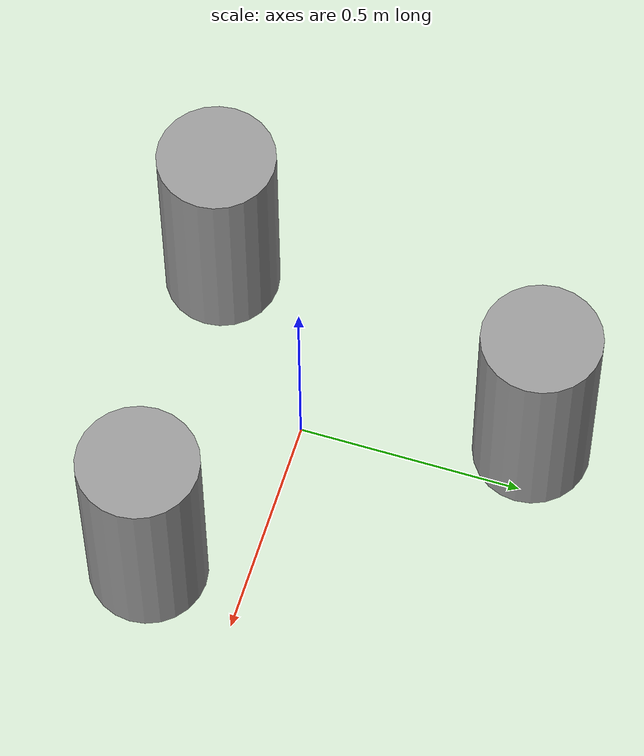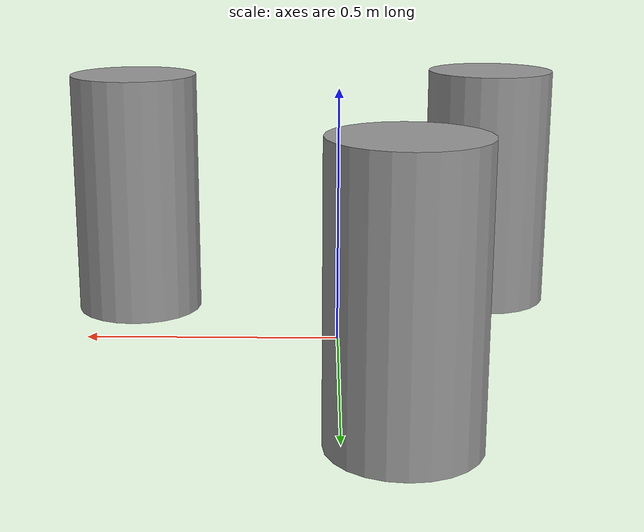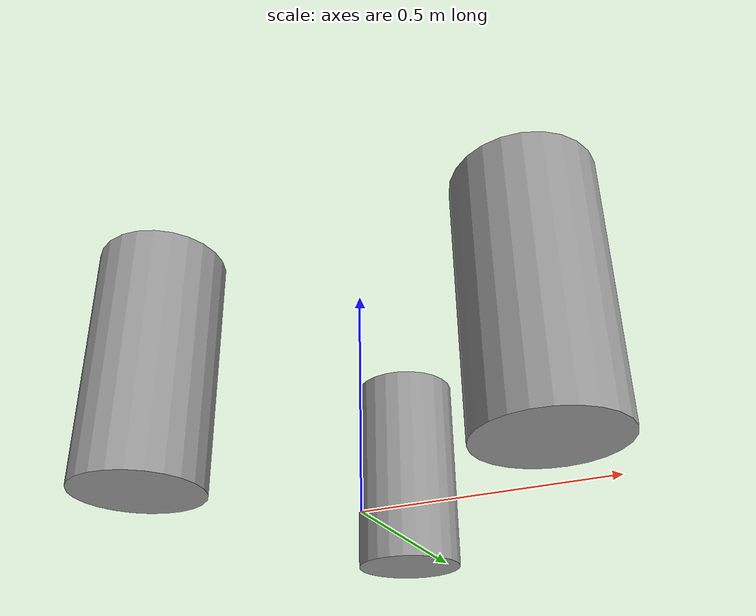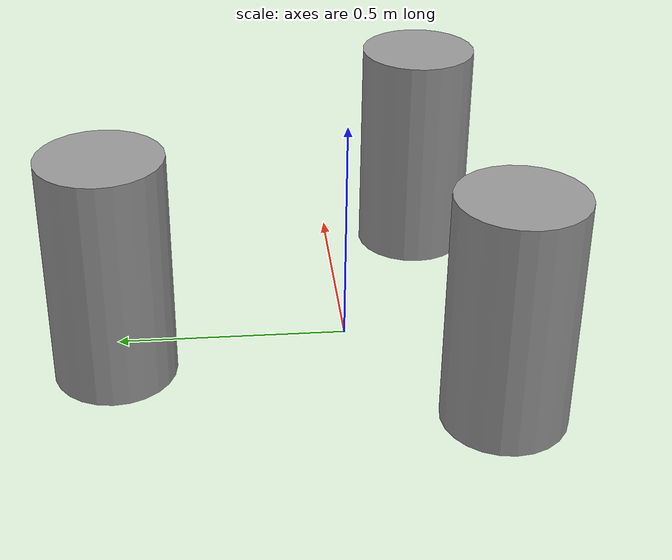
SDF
<?xml version='1.0'?>
<sdf version='1.6'>
  <model name='tunnel_occ_2'>
    <link name='link_0_clone_clone'>
      <pose frame=''>0.42322 -0.212034 0.25 0 -0 0</pose>
      <inertial>
        <mass>0.0416663</mass>
        <inertia>
          <ixx>0.00098188</ixx>
          <ixy>0</ixy>
          <ixz>0</ixz>
          <iyy>0.00098188</iyy>
          <iyz>0</iyz>
          <izz>0.00046751</izz>
        </inertia>
        <pose frame=''>0 0 0 0 -0 0</pose>
      </inertial>
      <self_collide>0</self_collide>
      <kinematic>0</kinematic>
      <gravity>1</gravity>
      <visual name='visual'>
        <pose frame=''>0 0 0 0 -0 0</pose>
        <geometry>
          <cylinder>
            <radius>0.13</radius>
            <length>0.5</length>
          </cylinder>
        </geometry>
        <material>
          <lighting>1</lighting>
          <script>
            <uri>file://media/materials/scripts/gazebo.material</uri>
            <name>Gazebo/Grey</name>
          </script>
          <ambient>0.3 0.3 0.3 1</ambient>
          <diffuse>0.7 0.7 0.7 1</diffuse>
          <specular>0.01 0.01 0.01 1</specular>
          <emissive>0 0 0 1</emissive>
          <shader type='pixel'>
            <normal_map>__default__</normal_map>
          </shader>
        </material>
        <cast_shadows>1</cast_shadows>
        <transparency>0</transparency>
      </visual>
      <collision name='collision'>
        <laser_retro>0</laser_retro>
        <max_contacts>10</max_contacts>
        <pose frame=''>0 0 0 0 -0 0</pose>
        <geometry>
          <cylinder>
            <radius>0.149803</radius>
            <length>0.46418</length>
          </cylinder>
        </geometry>
        <surface>
          <friction>
            <ode>
              <mu>1</mu>
              <mu2>1</mu2>
              <fdir1>0 0 0</fdir1>
              <slip1>0</slip1>
              <slip2>0</slip2>
            </ode>
            <torsional>
              <coefficient>1</coefficient>
              <patch_radius>0</patch_radius>
              <surface_radius>0</surface_radius>
              <use_patch_radius>1</use_patch_radius>
              <ode>
                <slip>0</slip>
              </ode>
            </torsional>
          </friction>
          <bounce>
            <restitution_coefficient>0</restitution_coefficient>
            <threshold>1e+06</threshold>
          </bounce>
          <contact>
            <collide_without_contact>0</collide_without_contact>
            <collide_without_contact_bitmask>1</collide_without_contact_bitmask>
            <collide_bitmask>1</collide_bitmask>
            <ode>
              <soft_cfm>0</soft_cfm>
              <soft_erp>0.2</soft_erp>
              <kp>1e+13</kp>
              <kd>1</kd>
              <max_vel>0.01</max_vel>
              <min_depth>0</min_depth>
            </ode>
            <bullet>
              <split_impulse>1</split_impulse>
              <split_impulse_penetration_threshold>-0.01</split_impulse_penetration_threshold>
              <soft_cfm>0</soft_cfm>
              <soft_erp>0.2</soft_erp>
              <kp>1e+13</kp>
              <kd>1</kd>
            </bullet>
          </contact>
        </surface>
      </collision>
    </link>
    <link name='link_0_clone_clone_clone'>
      <pose frame=''>-0.323729 -0.287563 0.25 0 -0 0</pose>
      <inertial>
        <mass>0.0416663</mass>
        <inertia>
          <ixx>0.00098188</ixx>
          <ixy>0</ixy>
          <ixz>0</ixz>
          <iyy>0.00098188</iyy>
          <iyz>0</iyz>
          <izz>0.00046751</izz>
        </inertia>
        <pose frame=''>0 0 0 0 -0 0</pose>
      </inertial>
      <self_collide>0</self_collide>
      <kinematic>0</kinematic>
      <gravity>1</gravity>
      <visual name='visual'>
        <pose frame=''>0 0 0 0 -0 0</pose>
        <geometry>
          <cylinder>
            <radius>0.13</radius>
            <length>0.5</length>
          </cylinder>
        </geometry>
        <material>
          <lighting>1</lighting>
          <script>
            <uri>file://media/materials/scripts/gazebo.material</uri>
            <name>Gazebo/Grey</name>
          </script>
          <ambient>0.3 0.3 0.3 1</ambient>
          <diffuse>0.7 0.7 0.7 1</diffuse>
          <specular>0.01 0.01 0.01 1</specular>
          <emissive>0 0 0 1</emissive>
          <shader type='pixel'>
            <normal_map>__default__</normal_map>
          </shader>
        </material>
        <cast_shadows>1</cast_shadows>
        <transparency>0</transparency>
      </visual>
      <collision name='collision'>
        <laser_retro>0</laser_retro>
        <max_contacts>10</max_contacts>
        <pose frame=''>0 0 0 0 -0 0</pose>
        <geometry>
          <cylinder>
            <radius>0.149803</radius>
            <length>0.46418</length>
          </cylinder>
        </geometry>
        <surface>
          <friction>
            <ode>
              <mu>1</mu>
              <mu2>1</mu2>
              <fdir1>0 0 0</fdir1>
              <slip1>0</slip1>
              <slip2>0</slip2>
            </ode>
            <torsional>
              <coefficient>1</coefficient>
              <patch_radius>0</patch_radius>
              <surface_radius>0</surface_radius>
              <use_patch_radius>1</use_patch_radius>
              <ode>
                <slip>0</slip>
              </ode>
            </torsional>
          </friction>
          <bounce>
            <restitution_coefficient>0</restitution_coefficient>
            <threshold>1e+06</threshold>
          </bounce>
          <contact>
            <collide_without_contact>0</collide_without_contact>
            <collide_without_contact_bitmask>1</collide_without_contact_bitmask>
            <collide_bitmask>1</collide_bitmask>
            <ode>
              <soft_cfm>0</soft_cfm>
              <soft_erp>0.2</soft_erp>
              <kp>1e+13</kp>
              <kd>1</kd>
              <max_vel>0.01</max_vel>
              <min_depth>0</min_depth>
            </ode>
            <bullet>
              <split_impulse>1</split_impulse>
              <split_impulse_penetration_threshold>-0.01</split_impulse_penetration_threshold>
              <soft_cfm>0</soft_cfm>
              <soft_erp>0.2</soft_erp>
              <kp>1e+13</kp>
              <kd>1</kd>
            </bullet>
          </contact>
        </surface>
      </collision>
    </link>
    <link name='link_0_clone_clone_clone_clone'>
      <pose frame=''>-0.099492 0.499594 0.25 0 -0 0</pose>
      <inertial>
        <mass>0.0416663</mass>
        <inertia>
          <ixx>0.00098188</ixx>
          <ixy>0</ixy>
          <ixz>0</ixz>
          <iyy>0.00098188</iyy>
          <iyz>0</iyz>
          <izz>0.00046751</izz>
        </inertia>
        <pose frame=''>0 0 0 0 -0 0</pose>
      </inertial>
      <self_collide>0</self_collide>
      <kinematic>0</kinematic>
      <gravity>1</gravity>
      <visual name='visual'>
        <pose frame=''>0 0 0 0 -0 0</pose>
        <geometry>
          <cylinder>
            <radius>0.13</radius>
            <length>0.5</length>
          </cylinder>
        </geometry>
        <material>
          <lighting>1</lighting>
          <script>
            <uri>file://media/materials/scripts/gazebo.material</uri>
            <name>Gazebo/Grey</name>
          </script>
          <ambient>0.3 0.3 0.3 1</ambient>
          <diffuse>0.7 0.7 0.7 1</diffuse>
          <specular>0.01 0.01 0.01 1</specular>
          <emissive>0 0 0 1</emissive>
          <shader type='pixel'>
            <normal_map>__default__</normal_map>
          </shader>
        </material>
        <cast_shadows>1</cast_shadows>
        <transparency>0</transparency>
      </visual>
      <collision name='collision'>
        <laser_retro>0</laser_retro>
        <max_contacts>10</max_contacts>
        <pose frame=''>0 0 0 0 -0 0</pose>
        <geometry>
          <cylinder>
            <radius>0.149803</radius>
            <length>0.46418</length>
          </cylinder>
        </geometry>
        <surface>
          <friction>
            <ode>
              <mu>1</mu>
              <mu2>1</mu2>
              <fdir1>0 0 0</fdir1>
              <slip1>0</slip1>
              <slip2>0</slip2>
            </ode>
            <torsional>
              <coefficient>1</coefficient>
              <patch_radius>0</patch_radius>
              <surface_radius>0</surface_radius>
              <use_patch_radius>1</use_patch_radius>
              <ode>
                <slip>0</slip>
              </ode>
            </torsional>
          </friction>
          <bounce>
            <restitution_coefficient>0</restitution_coefficient>
            <threshold>1e+06</threshold>
          </bounce>
          <contact>
            <collide_without_contact>0</collide_without_contact>
            <collide_without_contact_bitmask>1</collide_without_contact_bitmask>
            <collide_bitmask>1</collide_bitmask>
            <ode>
              <soft_cfm>0</soft_cfm>
              <soft_erp>0.2</soft_erp>
              <kp>1e+13</kp>
              <kd>1</kd>
              <max_vel>0.01</max_vel>
              <min_depth>0</min_depth>
            </ode>
            <bullet>
              <split_impulse>1</split_impulse>
              <split_impulse_penetration_threshold>-0.01</split_impulse_penetration_threshold>
              <soft_cfm>0</soft_cfm>
              <soft_erp>0.2</soft_erp>
              <kp>1e+13</kp>
              <kd>1</kd>
            </bullet>
          </contact>
        </surface>
      </collision>
    </link>
    <static>1</static>
    <allow_auto_disable>1</allow_auto_disable>
  </model>
</sdf>
